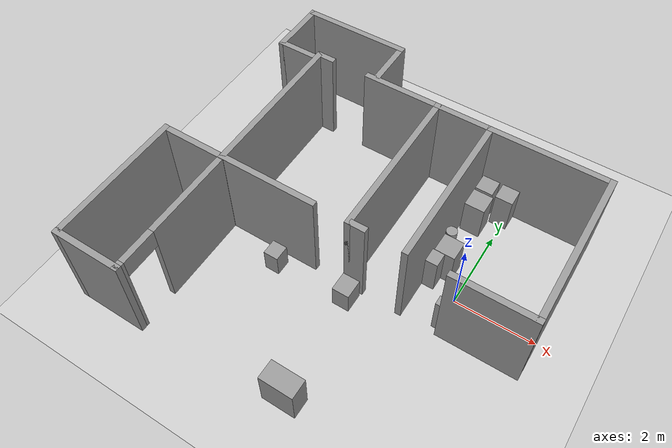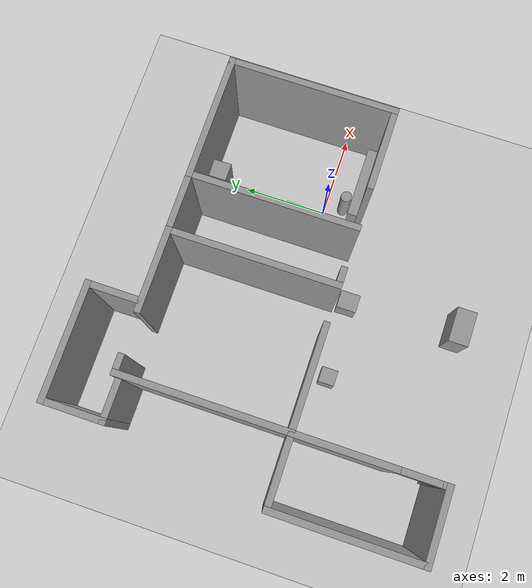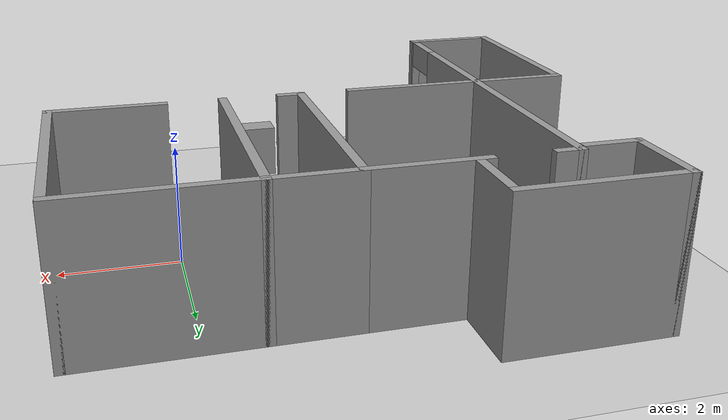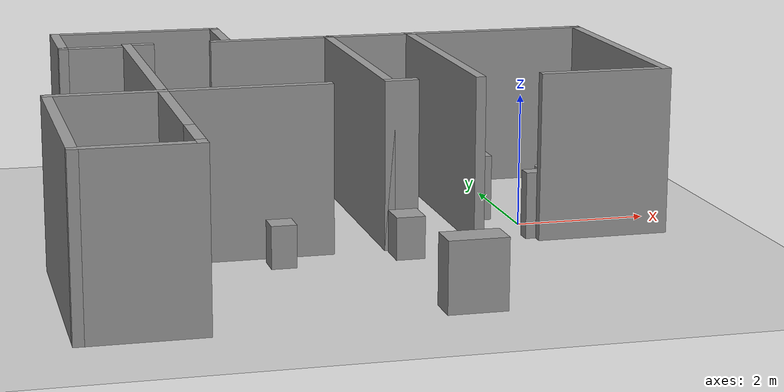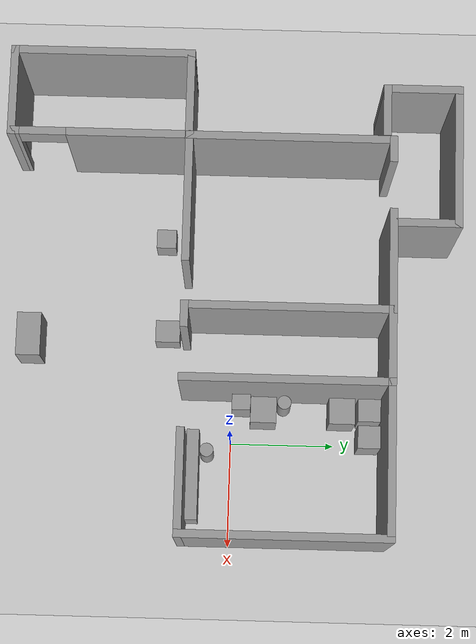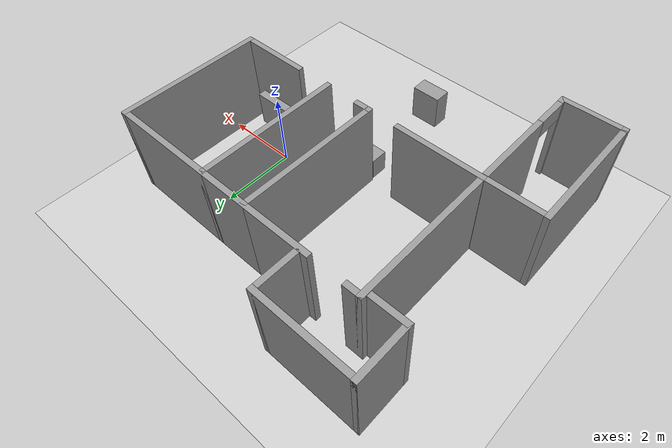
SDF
<sdf version="1.9">
 <world name="default">
  <model name="ground_plane">
   <static>true</static>
   <link name="link">
    <collision name="collision">
     <geometry><plane><normal>0 0 1</normal><size>100 100</size></plane></geometry>
     <surface><friction><ode><mu>100</mu><mu2>50</mu2></ode></friction></surface>
    </collision>
    <visual name="visual">
     <cast_shadows>false</cast_shadows>
     <geometry><plane><normal>0 0 1</normal><size>100 100</size></plane></geometry>
     <material>
      <script><uri>file://media/materials/scripts/gazebo.material</uri><name>Gazebo/Grey</name></script>
     </material>
    </visual>
   </link>
  </model>
  <model name="cma_escritorio">
   <pose>-1.7968200000000001 1.02121 0 0 0 0</pose>
   <link name="Wall_11">
    <collision name="Wall_11_Collision">
     <geometry><box><size>2 0.14999999999999999 2.5</size></box></geometry>
     <pose>0 0 1.25 0 0 0</pose>
    </collision>
    <visual name="Wall_11_Visual">
     <pose>0 0 1.25 0 0 0</pose>
     <geometry><box><size>2 0.14999999999999999 2.5</size></box></geometry>
     <material>
      <script><uri>file://media/materials/scripts/gazebo.material</uri><name>Gazebo/Grey</name></script>
      <ambient>1 1 1 1</ambient>
     </material>
    </visual>
    <pose>-1.3999999999999999 1.9299999999999999 0 0 0 3.1415899999999999</pose>
   </link>
   <link name="Wall_2">
    <collision name="Wall_2_Collision">
     <geometry><box><size>4 0.14999999999999999 2.5</size></box></geometry>
     <pose>0 0 1.25 0 0 0</pose>
    </collision>
    <visual name="Wall_2_Visual">
     <pose>0 0 1.25 0 0 0</pose>
     <geometry><box><size>4 0.14999999999999999 2.5</size></box></geometry>
     <material>
      <script><uri>file://media/materials/scripts/gazebo.material</uri><name>Gazebo/Grey</name></script>
      <ambient>1 1 1 1</ambient>
     </material>
    </visual>
    <pose>0.875 0.0050000000000000001 0 0 0 1.5708</pose>
   </link>
   <link name="Wall_25">
    <collision name="Wall_25_Collision">
     <geometry><box><size>2.5 0.14999999999999999 2.5</size></box></geometry>
     <pose>0 0 1.25 0 0 0</pose>
    </collision>
    <visual name="Wall_25_Visual">
     <pose>0 0 1.25 0 0 0</pose>
     <geometry><box><size>2.5 0.14999999999999999 2.5</size></box></geometry>
     <material>
      <script><uri>file://media/materials/scripts/gazebo.material</uri><name>Gazebo/Grey</name></script>
      <ambient>1 1 1 1</ambient>
     </material>
    </visual>
    <pose>-2.5499999999999998 -1.9299999999999999 0 0 0 3.1415899999999999</pose>
   </link>
   <link name="Wall_26">
    <collision name="Wall_26_Collision">
     <geometry><box><size>4 0.14999999999999999 2.5</size></box></geometry>
     <pose>0 0 1.25 0 0 0</pose>
    </collision>
    <visual name="Wall_26_Visual">
     <pose>0 0 1.25 0 0 0</pose>
     <geometry><box><size>4 0.14999999999999999 2.5</size></box></geometry>
     <material>
      <script><uri>file://media/materials/scripts/gazebo.material</uri><name>Gazebo/Grey</name></script>
      <ambient>1 1 1 1</ambient>
     </material>
    </visual>
    <pose>-3.7250000000000001 -0.0050000000000000001 0 0 0 1.5708</pose>
   </link>
   <link name="Wall_27">
    <collision name="Wall_27_Collision">
     <geometry><box><size>0.5 0.14999999999999999 2.5</size></box></geometry>
     <pose>0 0 1.25 0 0 0</pose>
    </collision>
    <visual name="Wall_27_Visual">
     <pose>0 0 1.25 0 0 0</pose>
     <geometry><box><size>0.5 0.14999999999999999 2.5</size></box></geometry>
     <material>
      <script><uri>file://media/materials/scripts/gazebo.material</uri><name>Gazebo/Grey</name></script>
      <ambient>1 1 1 1</ambient>
     </material>
    </visual>
    <pose>-3.5499999999999998 1.9199999999999999 0 0 0 0</pose>
   </link>
   <link name="Wall_3">
    <collision name="Wall_3_Collision">
     <geometry><box><size>3 0.14999999999999999 2.5</size></box></geometry>
     <pose>0 0 1.25 0 0 0</pose>
    </collision>
    <visual name="Wall_3_Visual">
     <pose>0 0 1.25 0 0 0</pose>
     <geometry><box><size>3 0.14999999999999999 2.5</size></box></geometry>
     <material>
      <script><uri>file://media/materials/scripts/gazebo.material</uri><name>Gazebo/Grey</name></script>
      <ambient>1 1 1 1</ambient>
     </material>
    </visual>
    <pose>2.2999999999999998 1.9299999999999999 0 0 0 0</pose>
   </link>
   <link name="Wall_4">
    <collision name="Wall_4_Collision">
     <geometry><box><size>4 0.14999999999999999 2.5</size></box></geometry>
     <pose>0 0 1.25 0 0 0</pose>
    </collision>
    <visual name="Wall_4_Visual">
     <pose>0 0 1.25 0 0 0</pose>
     <geometry><box><size>4 0.14999999999999999 2.5</size></box></geometry>
     <material>
      <script><uri>file://media/materials/scripts/gazebo.material</uri><name>Gazebo/Grey</name></script>
      <ambient>1 1 1 1</ambient>
     </material>
    </visual>
    <pose>3.7250000000000001 0.0050000000000000001 0 0 0 -1.5708</pose>
   </link>
   <link name="Wall_5">
    <collision name="Wall_5_Collision">
     <geometry><box><size>2 0.14999999999999999 2.5</size></box></geometry>
     <pose>0 0 1.25 0 0 0</pose>
    </collision>
    <visual name="Wall_5_Visual">
     <pose>0 0 1.25 0 0 0</pose>
     <geometry><box><size>2 0.14999999999999999 2.5</size></box></geometry>
     <material>
      <script><uri>file://media/materials/scripts/gazebo.material</uri><name>Gazebo/Grey</name></script>
      <ambient>1 1 1 1</ambient>
     </material>
    </visual>
    <pose>2.7999999999999998 -1.9199999999999999 0 0 0 3.1415899999999999</pose>
   </link>
   <link name="Wall_7">
    <collision name="Wall_7_Collision">
     <geometry><box><size>1.5 0.14999999999999999 2.5</size></box></geometry>
     <pose>0 0 1.25 0 0 0</pose>
    </collision>
    <visual name="Wall_7_Visual">
     <pose>0 0 1.25 0 0 0</pose>
     <geometry><box><size>1.5 0.14999999999999999 2.5</size></box></geometry>
     <material>
      <script><uri>file://media/materials/scripts/gazebo.material</uri><name>Gazebo/Grey</name></script>
      <ambient>1 1 1 1</ambient>
     </material>
    </visual>
    <pose>0.20000000000000001 1.9299999999999999 0 0 0 3.1415899999999999</pose>
   </link>
   <link name="Wall_8">
    <collision name="Wall_8_Collision">
     <geometry><box><size>4 0.14999999999999999 2.5</size></box></geometry>
     <pose>0 0 1.25 0 0 0</pose>
    </collision>
    <visual name="Wall_8_Visual">
     <pose>0 0 1.25 0 0 0</pose>
     <geometry><box><size>4 0.14999999999999999 2.5</size></box></geometry>
     <material>
      <script><uri>file://media/materials/scripts/gazebo.material</uri><name>Gazebo/Grey</name></script>
      <ambient>1 1 1 1</ambient>
     </material>
    </visual>
    <pose>-0.47499999999999998 0.0050000000000000001 0 0 0 -1.5708</pose>
   </link>
   <link name="Wall_9">
    <collision name="Wall_9_Collision">
     <geometry><box><size>0.5 0.14999999999999999 2.5</size></box></geometry>
     <pose>0 0 1.25 0 0 0</pose>
    </collision>
    <visual name="Wall_9_Visual">
     <pose>0 0 1.25 0 0 0</pose>
     <geometry><box><size>0.5 0.14999999999999999 2.5</size></box></geometry>
     <material>
      <script><uri>file://media/materials/scripts/gazebo.material</uri><name>Gazebo/Grey</name></script>
      <ambient>1 1 1 1</ambient>
     </material>
    </visual>
    <pose>-0.29999999999999999 -1.9199999999999999 0 0 0 0</pose>
   </link>
   <static>true</static>
  </model>
  <model name="cma_banheiro">
   <pose>-5.2292800000000002 3.4870999999999999 0 0 0 0</pose>
   <link name="Wall_0">
    <collision name="Wall_0_Collision">
     <geometry><box><size>1 0.14999999999999999 2.5</size></box></geometry>
     <pose>0 0 1.25 0 0 0</pose>
    </collision>
    <visual name="Wall_0_Visual">
     <pose>0 0 1.25 0 0 0</pose>
     <geometry><box><size>1 0.14999999999999999 2.5</size></box></geometry>
     <material>
      <script><uri>file://media/materials/scripts/gazebo.material</uri><name>Gazebo/Grey</name></script>
      <ambient>1 1 1 1</ambient>
     </material>
    </visual>
    <pose>-0.875 -0.67500000000000004 0 0 0 3.1415899999999999</pose>
   </link>
   <link name="Wall_1">
    <collision name="Wall_1_Collision">
     <geometry><box><size>1.5 0.14999999999999999 2.5</size></box></geometry>
     <pose>0 0 1.25 0 0 0</pose>
    </collision>
    <visual name="Wall_1_Visual">
     <pose>0 0 1.25 0 0 0</pose>
     <geometry><box><size>1.5 0.14999999999999999 2.5</size></box></geometry>
     <material>
      <script><uri>file://media/materials/scripts/gazebo.material</uri><name>Gazebo/Grey</name></script>
      <ambient>1 1 1 1</ambient>
     </material>
    </visual>
    <pose>-1.3 0 0 0 0 1.5708</pose>
   </link>
   <link name="Wall_2">
    <collision name="Wall_2_Collision">
     <geometry><box><size>2.75 0.14999999999999999 2.5</size></box></geometry>
     <pose>0 0 1.25 0 0 0</pose>
    </collision>
    <visual name="Wall_2_Visual">
     <pose>0 0 1.25 0 0 0</pose>
     <geometry><box><size>2.75 0.14999999999999999 2.5</size></box></geometry>
     <material>
      <script><uri>file://media/materials/scripts/gazebo.material</uri><name>Gazebo/Grey</name></script>
      <ambient>1 1 1 1</ambient>
     </material>
    </visual>
    <pose>0 0.67500000000000004 0 0 0 0</pose>
   </link>
   <link name="Wall_4">
    <collision name="Wall_4_Collision">
     <geometry><box><size>1.25 0.14999999999999999 2.5</size></box></geometry>
     <pose>0 0 1.25 0 0 0</pose>
    </collision>
    <visual name="Wall_4_Visual">
     <pose>0 0 1.25 0 0 0</pose>
     <geometry><box><size>1.25 0.14999999999999999 2.5</size></box></geometry>
     <material>
      <script><uri>file://media/materials/scripts/gazebo.material</uri><name>Gazebo/Grey</name></script>
      <ambient>1 1 1 1</ambient>
     </material>
    </visual>
    <pose>1.3 0.125 0 0 0 -1.5708</pose>
   </link>
   <static>true</static>
  </model>
  <model name="cma_varanda1">
   <pose>-6.3251799999999996 -2.5931299999999999 0 0 0 0</pose>
   <link name="Wall_0">
    <pose>0.80000000000000004 0 0 0 0 -1.5708</pose>
    <visual name="Wall_0_Visual_0">
     <pose>-0.55249999999999999 0 1.25 0 0 0</pose>
     <geometry><box><size>2.395 0.14999999999999999 2.5</size></box></geometry>
     <material>
      <script><uri>file://media/materials/scripts/gazebo.material</uri><name>Gazebo/Grey</name></script>
      <ambient>1 1 1 1</ambient>
     </material>
    </visual>
    <collision name="Wall_0_Collision_0">
     <geometry><box><size>2.395 0.14999999999999999 2.5</size></box></geometry>
     <pose>-0.55249999999999999 0 1.25 0 0 0</pose>
    </collision>
    <visual name="Wall_0_Visual_1">
     <pose>1.6375 0 1.25 0 0 0</pose>
     <geometry><box><size>0.22500000000000001 0.14999999999999999 2.5</size></box></geometry>
     <material>
      <script><uri>file://media/materials/scripts/gazebo.material</uri><name>Gazebo/Grey</name></script>
      <ambient>1 1 1 1</ambient>
     </material>
    </visual>
    <collision name="Wall_0_Collision_1">
     <geometry><box><size>0.22500000000000001 0.14999999999999999 2.5</size></box></geometry>
     <pose>1.6375 0 1.25 0 0 0</pose>
    </collision>
    <visual name="Wall_0_Visual_2">
     <pose>1.085 0 2.25 0 0 0</pose>
     <geometry><box><size>0.88 0.14999999999999999 0.5</size></box></geometry>
     <material>
      <script><uri>file://media/materials/scripts/gazebo.material</uri><name>Gazebo/Grey</name></script>
      <ambient>1 1 1 1</ambient>
     </material>
    </visual>
    <collision name="Wall_0_Collision_2">
     <geometry><box><size>0.88 0.14999999999999999 0.5</size></box></geometry>
     <pose>1.085 0 2.25 0 0 0</pose>
    </collision>
   </link>
   <link name="Wall_1">
    <collision name="Wall_1_Collision">
     <geometry><box><size>1.75 0.14999999999999999 2.5</size></box></geometry>
     <pose>0 0 1.25 0 0 0</pose>
    </collision>
    <visual name="Wall_1_Visual">
     <pose>0 0 1.25 0 0 0</pose>
     <geometry><box><size>1.75 0.14999999999999999 2.5</size></box></geometry>
     <material>
      <script><uri>file://media/materials/scripts/gazebo.material</uri><name>Gazebo/Grey</name></script>
      <ambient>1 1 1 1</ambient>
     </material>
    </visual>
    <pose>0 -1.675 0 0 0 3.1415899999999999</pose>
   </link>
   <link name="Wall_2">
    <collision name="Wall_2_Collision">
     <geometry><box><size>3.5 0.14999999999999999 2.5</size></box></geometry>
     <pose>0 0 1.25 0 0 0</pose>
    </collision>
    <visual name="Wall_2_Visual">
     <pose>0 0 1.25 0 0 0</pose>
     <geometry><box><size>3.5 0.14999999999999999 2.5</size></box></geometry>
     <material>
      <script><uri>file://media/materials/scripts/gazebo.material</uri><name>Gazebo/Grey</name></script>
      <ambient>1 1 1 1</ambient>
     </material>
    </visual>
    <pose>-0.80000000000000004 0 0 0 0 1.5708</pose>
   </link>
   <link name="Wall_3">
    <collision name="Wall_3_Collision">
     <geometry><box><size>1.75 0.14999999999999999 2.5</size></box></geometry>
     <pose>0 0 1.25 0 0 0</pose>
    </collision>
    <visual name="Wall_3_Visual">
     <pose>0 0 1.25 0 0 0</pose>
     <geometry><box><size>1.75 0.14999999999999999 2.5</size></box></geometry>
     <material>
      <script><uri>file://media/materials/scripts/gazebo.material</uri><name>Gazebo/Grey</name></script>
      <ambient>1 1 1 1</ambient>
     </material>
    </visual>
    <pose>0 1.675 0 0 0 0</pose>
   </link>
   <static>true</static>
  </model>
  <model name="cma_armario">
   <link name="link_0">
    <pose>1.3215699999999999 0.88517800000000002 0.5 0 0 0</pose>
    <inertial>
     <mass>0.40237600000000001</mass>
     <inertia>
      <ixx>0.0353686</ixx>
      <ixy>0</ixy>
      <ixz>0</ixz>
      <iyy>0.13261600000000001</iyy>
      <iyz>0</iyz>
      <izz>0.100922</izz>
     </inertia>
    </inertial>
    <visual name="visual">
     <geometry><box><size>1.7187699999999999 0.234069 1</size></box></geometry>
     <material>
      <lighting>true</lighting>
      <script><uri>file://media/materials/scripts/gazebo.material</uri><name>Gazebo/Grey</name></script>
      <ambient>0.300000012 0.300000012 0.300000012 1</ambient>
      <diffuse>0.699999988 0.699999988 0.699999988 1</diffuse>
      <specular>0.00999999978 0.00999999978 0.00999999978 1</specular>
      <emissive>0 0 0 1</emissive>
     </material>
    </visual>
    <collision name="collision">
     <geometry><box><size>1.7187699999999999 0.234069 1</size></box></geometry>
     <surface>
      <friction>
       <ode><mu>1</mu><mu2>1</mu2><fdir1>0 0 0</fdir1><slip1>0</slip1><slip2>0</slip2></ode>
       <torsional>
        <coefficient>1</coefficient>
        <patch_radius>0</patch_radius>
        <surface_radius>0</surface_radius>
        <use_patch_radius>true</use_patch_radius>
        <ode><slip>0</slip></ode>
       </torsional>
      </friction>
      <bounce><restitution_coefficient>0</restitution_coefficient><threshold>1000000</threshold></bounce>
      <contact>
       <collide_without_contact>false</collide_without_contact>
       <collide_without_contact_bitmask>1</collide_without_contact_bitmask>
       <collide_bitmask>1</collide_bitmask>
       <ode>
        <soft_cfm>0</soft_cfm>
        <soft_erp>0.20000000000000001</soft_erp>
        <kp>10000000000000</kp>
        <kd>1</kd>
        <max_vel>0.01</max_vel>
        <min_depth>0</min_depth>
       </ode>
       <bullet>
        <split_impulse>true</split_impulse>
        <split_impulse_penetration_threshold>-0.01</split_impulse_penetration_threshold>
        <soft_cfm>0</soft_cfm>
        <soft_erp>0.20000000000000001</soft_erp>
        <kp>10000000000000</kp>
        <kd>1</kd>
       </bullet>
      </contact>
     </surface>
    </collision>
   </link>
   <static>false</static>
   <pose>-0.61412800000000001 -1.59222 -9.9999999999999995e-07 1.9999999999999999e-06 -1.0339757656912846e-25 0.00079299999999999998</pose>
  </model>
  <model name="cma_lixo">
   <link name="link_1">
    <pose>0.88296200000000002 1.81586 0.5 0 0 0</pose>
    <inertial>
     <mass>0.068764400000000003</mass>
     <inertia>
      <ixx>0.00602588</ixx>
      <ixy>0</ixy>
      <ixz>0</ixz>
      <iyy>0.00602588</iyy>
      <iyz>0</iyz>
      <izz>0.00059106800000000004</izz>
     </inertia>
    </inertial>
    <visual name="visual">
     <geometry><cylinder><radius>0.13111200000000001</radius><length>1</length></cylinder></geometry>
     <material>
      <lighting>true</lighting>
      <script><uri>file://media/materials/scripts/gazebo.material</uri><name>Gazebo/Grey</name></script>
      <ambient>0.300000012 0.300000012 0.300000012 1</ambient>
      <diffuse>0.699999988 0.699999988 0.699999988 1</diffuse>
      <specular>0.00999999978 0.00999999978 0.00999999978 1</specular>
      <emissive>0 0 0 1</emissive>
     </material>
    </visual>
    <collision name="collision">
     <geometry><cylinder><radius>0.13111200000000001</radius><length>1</length></cylinder></geometry>
     <surface>
      <friction>
       <ode><mu>1</mu><mu2>1</mu2><fdir1>0 0 0</fdir1><slip1>0</slip1><slip2>0</slip2></ode>
       <torsional>
        <coefficient>1</coefficient>
        <patch_radius>0</patch_radius>
        <surface_radius>0</surface_radius>
        <use_patch_radius>true</use_patch_radius>
        <ode><slip>0</slip></ode>
       </torsional>
      </friction>
      <bounce><restitution_coefficient>0</restitution_coefficient><threshold>1000000</threshold></bounce>
      <contact>
       <collide_without_contact>false</collide_without_contact>
       <collide_without_contact_bitmask>1</collide_without_contact_bitmask>
       <collide_bitmask>1</collide_bitmask>
       <ode>
        <soft_cfm>0</soft_cfm>
        <soft_erp>0.20000000000000001</soft_erp>
        <kp>10000000000000</kp>
        <kd>1</kd>
        <max_vel>0.01</max_vel>
        <min_depth>0</min_depth>
       </ode>
       <bullet>
        <split_impulse>true</split_impulse>
        <split_impulse_penetration_threshold>-0.01</split_impulse_penetration_threshold>
        <soft_cfm>0</soft_cfm>
        <soft_erp>0.20000000000000001</soft_erp>
        <kp>10000000000000</kp>
        <kd>1</kd>
       </bullet>
      </contact>
     </surface>
    </collision>
   </link>
   <static>false</static>
   <pose>-0.62783999999999995 -2.2669899999999998 -9.0000000000000002e-06 0 0 0.010421999999999999</pose>
  </model>
  <model name="cma_gaveteiro_pequeno">
   <link name="link_0">
    <pose>0.25617400000000001 1.2505500000000001 0.5 0 0 0</pose>
    <inertial>
     <mass>0.18718599999999999</mass>
     <inertia>
      <ixx>0.018509999999999999</ixx>
      <ixy>0</ixy>
      <ixz>0</ixz>
      <iyy>0.018527600000000002</iyy>
      <iyz>0</iyz>
      <izz>0.00583981</izz>
     </inertia>
    </inertial>
    <visual name="visual">
     <geometry><box><size>0.43331700000000001 0.432002 1</size></box></geometry>
     <material>
      <lighting>true</lighting>
      <script><uri>file://media/materials/scripts/gazebo.material</uri><name>Gazebo/Grey</name></script>
      <ambient>0.300000012 0.300000012 0.300000012 1</ambient>
      <diffuse>0.699999988 0.699999988 0.699999988 1</diffuse>
      <specular>0.00999999978 0.00999999978 0.00999999978 1</specular>
      <emissive>0 0 0 1</emissive>
     </material>
    </visual>
    <collision name="collision">
     <geometry><box><size>0.43331700000000001 0.432002 1</size></box></geometry>
     <surface>
      <friction>
       <ode><mu>1</mu><mu2>1</mu2><fdir1>0 0 0</fdir1><slip1>0</slip1><slip2>0</slip2></ode>
       <torsional>
        <coefficient>1</coefficient>
        <patch_radius>0</patch_radius>
        <surface_radius>0</surface_radius>
        <use_patch_radius>true</use_patch_radius>
        <ode><slip>0</slip></ode>
       </torsional>
      </friction>
      <bounce><restitution_coefficient>0</restitution_coefficient><threshold>1000000</threshold></bounce>
      <contact>
       <collide_without_contact>false</collide_without_contact>
       <collide_without_contact_bitmask>1</collide_without_contact_bitmask>
       <collide_bitmask>1</collide_bitmask>
       <ode>
        <soft_cfm>0</soft_cfm>
        <soft_erp>0.20000000000000001</soft_erp>
        <kp>10000000000000</kp>
        <kd>1</kd>
        <max_vel>0.01</max_vel>
        <min_depth>0</min_depth>
       </ode>
       <bullet>
        <split_impulse>true</split_impulse>
        <split_impulse_penetration_threshold>-0.01</split_impulse_penetration_threshold>
        <soft_cfm>0</soft_cfm>
        <soft_erp>0.20000000000000001</soft_erp>
        <kp>10000000000000</kp>
        <kd>1</kd>
       </bullet>
      </contact>
     </surface>
    </collision>
   </link>
   <static>false</static>
   <pose>-0.85306099999999996 1.39432 -6.9999999999999999e-06 3.9999999999999998e-06 -1.9999999999999999e-06 9.0000000000000002e-06</pose>
  </model>
  <model name="cma_gaveteiro_pequeno_0">
   <link name="link_0">
    <pose>0.25617400000000001 1.2505500000000001 0.5 0 0 0</pose>
    <inertial>
     <mass>0.18718599999999999</mass>
     <inertia>
      <ixx>0.018509999999999999</ixx>
      <ixy>0</ixy>
      <ixz>0</ixz>
      <iyy>0.018527600000000002</iyy>
      <iyz>0</iyz>
      <izz>0.00583981</izz>
     </inertia>
    </inertial>
    <visual name="visual">
     <geometry><box><size>0.43331700000000001 0.432002 1</size></box></geometry>
     <material>
      <lighting>true</lighting>
      <script><uri>file://media/materials/scripts/gazebo.material</uri><name>Gazebo/Grey</name></script>
      <ambient>0.300000012 0.300000012 0.300000012 1</ambient>
      <diffuse>0.699999988 0.699999988 0.699999988 1</diffuse>
      <specular>0.00999999978 0.00999999978 0.00999999978 1</specular>
      <emissive>0 0 0 1</emissive>
     </material>
    </visual>
    <collision name="collision">
     <geometry><box><size>0.43331700000000001 0.432002 1</size></box></geometry>
     <surface>
      <friction>
       <ode><mu>1</mu><mu2>1</mu2><fdir1>0 0 0</fdir1><slip1>0</slip1><slip2>0</slip2></ode>
       <torsional>
        <coefficient>1</coefficient>
        <patch_radius>0</patch_radius>
        <surface_radius>0</surface_radius>
        <use_patch_radius>true</use_patch_radius>
        <ode><slip>0</slip></ode>
       </torsional>
      </friction>
      <bounce><restitution_coefficient>0</restitution_coefficient><threshold>1000000</threshold></bounce>
      <contact>
       <collide_without_contact>false</collide_without_contact>
       <collide_without_contact_bitmask>1</collide_without_contact_bitmask>
       <collide_bitmask>1</collide_bitmask>
       <ode>
        <soft_cfm>0</soft_cfm>
        <soft_erp>0.20000000000000001</soft_erp>
        <kp>10000000000000</kp>
        <kd>1</kd>
        <max_vel>0.01</max_vel>
        <min_depth>0</min_depth>
       </ode>
       <bullet>
        <split_impulse>true</split_impulse>
        <split_impulse_penetration_threshold>-0.01</split_impulse_penetration_threshold>
        <soft_cfm>0</soft_cfm>
        <soft_erp>0.20000000000000001</soft_erp>
        <kp>10000000000000</kp>
        <kd>1</kd>
       </bullet>
      </contact>
     </surface>
    </collision>
   </link>
   <static>false</static>
   <pose>-0.34129599999999999 1.3951 5.0000000000000004e-06 -5.0000000000000013e-06 5.0000000000000013e-06 -4.6999999999999997e-05</pose>
  </model>
  <model name="cma_gaveteiro">
   <link name="link_0">
    <pose>0 3.9999999999999998e-06 0 0 0 0</pose>
    <inertial>
     <mass>0.245086</mass>
     <inertia>
      <ixx>0.025418</ixx>
      <ixy>0</ixy>
      <ixz>0</ixz>
      <iyy>0.025441100000000001</iyy>
      <iyz>0</iyz>
      <izz>0.010011300000000001</izz>
     </inertia>
    </inertial>
    <visual name="visual">
     <geometry><box><size>0.49565700000000001 0.49449100000000001 1</size></box></geometry>
     <material>
      <lighting>true</lighting>
      <script><uri>file://media/materials/scripts/gazebo.material</uri><name>Gazebo/Grey</name></script>
      <ambient>0.300000012 0.300000012 0.300000012 1</ambient>
      <diffuse>0.699999988 0.699999988 0.699999988 1</diffuse>
      <specular>0.00999999978 0.00999999978 0.00999999978 1</specular>
      <emissive>0 0 0 1</emissive>
     </material>
    </visual>
    <collision name="collision">
     <geometry><box><size>0.49565700000000001 0.49449100000000001 1</size></box></geometry>
     <surface>
      <friction>
       <ode><mu>1</mu><mu2>1</mu2><fdir1>0 0 0</fdir1><slip1>0</slip1><slip2>0</slip2></ode>
       <torsional>
        <coefficient>1</coefficient>
        <patch_radius>0</patch_radius>
        <surface_radius>0</surface_radius>
        <use_patch_radius>true</use_patch_radius>
        <ode><slip>0</slip></ode>
       </torsional>
      </friction>
      <bounce><restitution_coefficient>0</restitution_coefficient><threshold>1000000</threshold></bounce>
      <contact>
       <collide_without_contact>false</collide_without_contact>
       <collide_without_contact_bitmask>1</collide_without_contact_bitmask>
       <collide_bitmask>1</collide_bitmask>
       <ode>
        <soft_cfm>0</soft_cfm>
        <soft_erp>0.20000000000000001</soft_erp>
        <kp>10000000000000</kp>
        <kd>1</kd>
        <max_vel>0.01</max_vel>
        <min_depth>0</min_depth>
       </ode>
       <bullet>
        <split_impulse>true</split_impulse>
        <split_impulse_penetration_threshold>-0.01</split_impulse_penetration_threshold>
        <soft_cfm>0</soft_cfm>
        <soft_erp>0.20000000000000001</soft_erp>
        <kp>10000000000000</kp>
        <kd>1</kd>
       </bullet>
      </contact>
     </surface>
    </collision>
   </link>
   <static>false</static>
   <pose>-0.56907700000000006 2.1223000000000001 0.5 -1.0000000000000002e-06 -2.0000000000000003e-06 0.00028399999999999996</pose>
  </model>
  <model name="cma_gaveteiro_0">
   <link name="link_0">
    <pose>0 3.9999999999999998e-06 0 0 0 0</pose>
    <inertial>
     <mass>0.245086</mass>
     <inertia>
      <ixx>0.025418</ixx>
      <ixy>0</ixy>
      <ixz>0</ixz>
      <iyy>0.025441100000000001</iyy>
      <iyz>0</iyz>
      <izz>0.010011300000000001</izz>
     </inertia>
    </inertial>
    <visual name="visual">
     <geometry><box><size>0.49565700000000001 0.49449100000000001 1</size></box></geometry>
     <material>
      <lighting>true</lighting>
      <script><uri>file://media/materials/scripts/gazebo.material</uri><name>Gazebo/Grey</name></script>
      <ambient>0.300000012 0.300000012 0.300000012 1</ambient>
      <diffuse>0.699999988 0.699999988 0.699999988 1</diffuse>
      <specular>0.00999999978 0.00999999978 0.00999999978 1</specular>
      <emissive>0 0 0 1</emissive>
     </material>
    </visual>
    <collision name="collision">
     <geometry><box><size>0.49565700000000001 0.49449100000000001 1</size></box></geometry>
     <surface>
      <friction>
       <ode><mu>1</mu><mu2>1</mu2><fdir1>0 0 0</fdir1><slip1>0</slip1><slip2>0</slip2></ode>
       <torsional>
        <coefficient>1</coefficient>
        <patch_radius>0</patch_radius>
        <surface_radius>0</surface_radius>
        <use_patch_radius>true</use_patch_radius>
        <ode><slip>0</slip></ode>
       </torsional>
      </friction>
      <bounce><restitution_coefficient>0</restitution_coefficient><threshold>1000000</threshold></bounce>
      <contact>
       <collide_without_contact>false</collide_without_contact>
       <collide_without_contact_bitmask>1</collide_without_contact_bitmask>
       <collide_bitmask>1</collide_bitmask>
       <ode>
        <soft_cfm>0</soft_cfm>
        <soft_erp>0.20000000000000001</soft_erp>
        <kp>10000000000000</kp>
        <kd>1</kd>
        <max_vel>0.01</max_vel>
        <min_depth>0</min_depth>
       </ode>
       <bullet>
        <split_impulse>true</split_impulse>
        <split_impulse_penetration_threshold>-0.01</split_impulse_penetration_threshold>
        <soft_cfm>0</soft_cfm>
        <soft_erp>0.20000000000000001</soft_erp>
        <kp>10000000000000</kp>
        <kd>1</kd>
       </bullet>
      </contact>
     </surface>
    </collision>
   </link>
   <static>false</static>
   <pose>-0.56013900000000005 0.62359500000000001 0.50000100000000003 1.0000000000000002e-06 1.0000000000000004e-06 -0.0078110000000000002</pose>
  </model>
  <model name="cma_lixo_0">
   <link name="link_1">
    <pose>0.88296200000000002 1.81586 0.5 0 0 0</pose>
    <inertial>
     <mass>0.068764400000000003</mass>
     <inertia>
      <ixx>0.00602588</ixx>
      <ixy>0</ixy>
      <ixz>0</ixz>
      <iyy>0.00602588</iyy>
      <iyz>0</iyz>
      <izz>0.00059106800000000004</izz>
     </inertia>
    </inertial>
    <visual name="visual">
     <geometry><cylinder><radius>0.13111200000000001</radius><length>1</length></cylinder></geometry>
     <material>
      <lighting>true</lighting>
      <script><uri>file://media/materials/scripts/gazebo.material</uri><name>Gazebo/Grey</name></script>
      <ambient>0.300000012 0.300000012 0.300000012 1</ambient>
      <diffuse>0.699999988 0.699999988 0.699999988 1</diffuse>
      <specular>0.00999999978 0.00999999978 0.00999999978 1</specular>
      <emissive>0 0 0 1</emissive>
     </material>
    </visual>
    <collision name="collision">
     <geometry><cylinder><radius>0.13111200000000001</radius><length>1</length></cylinder></geometry>
     <surface>
      <friction>
       <ode><mu>1</mu><mu2>1</mu2><fdir1>0 0 0</fdir1><slip1>0</slip1><slip2>0</slip2></ode>
       <torsional>
        <coefficient>1</coefficient>
        <patch_radius>0</patch_radius>
        <surface_radius>0</surface_radius>
        <use_patch_radius>true</use_patch_radius>
        <ode><slip>0</slip></ode>
       </torsional>
      </friction>
      <bounce><restitution_coefficient>0</restitution_coefficient><threshold>1000000</threshold></bounce>
      <contact>
       <collide_without_contact>false</collide_without_contact>
       <collide_without_contact_bitmask>1</collide_without_contact_bitmask>
       <collide_bitmask>1</collide_bitmask>
       <ode>
        <soft_cfm>0</soft_cfm>
        <soft_erp>0.20000000000000001</soft_erp>
        <kp>10000000000000</kp>
        <kd>1</kd>
        <max_vel>0.01</max_vel>
        <min_depth>0</min_depth>
       </ode>
       <bullet>
        <split_impulse>true</split_impulse>
        <split_impulse_penetration_threshold>-0.01</split_impulse_penetration_threshold>
        <soft_cfm>0</soft_cfm>
        <soft_erp>0.20000000000000001</soft_erp>
        <kp>10000000000000</kp>
        <kd>1</kd>
       </bullet>
      </contact>
     </surface>
    </collision>
   </link>
   <static>false</static>
   <pose>-1.5905199999999999 -0.796852 -6.9999999999999999e-06 0 0 0.0007049999999999999</pose>
  </model>
  <model name="unit_box_0">
   <pose>-0.697515 0.193796 0.5 0 0 3.9999999999999998e-06</pose>
   <link name="link">
    <inertial>
     <mass>1</mass>
     <inertia>
      <ixx>0.16666700000000001</ixx>
      <ixy>0</ixy>
      <ixz>0</ixz>
      <iyy>0.16666700000000001</iyy>
      <iyz>0</iyz>
      <izz>0.16666700000000001</izz>
     </inertia>
    </inertial>
    <collision name="collision"><geometry><box><size>0.298595 0.35513 1</size></box></geometry></collision>
    <visual name="visual">
     <geometry><box><size>0.298595 0.35513 1</size></box></geometry>
     <material>
      <script><name>Gazebo/Grey</name><uri>file://media/materials/scripts/gazebo.material</uri></script>
     </material>
    </visual>
   </link>
  </model>
  <model name="cma_bau_s">
   <link name="link_1">
    <pose>0.109594 0.27229300000000001 0 0 0 0</pose>
    <inertial>
     <mass>0.12547900000000001</mass>
     <inertia>
      <ixx>0.0064194300000000003</ixx>
      <ixy>0</ixy>
      <ixz>0</ixz>
      <iyy>0.0059753999999999996</iyy>
      <iyz>0</iyz>
      <izz>0.0042208499999999999</izz>
     </inertia>
    </inertial>
    <visual name="visual">
     <geometry><box><size>0.42496400000000001 0.47228300000000001 0.62511799999999995</size></box></geometry>
     <material>
      <lighting>true</lighting>
      <script><uri>file://media/materials/scripts/gazebo.material</uri><name>Gazebo/Grey</name></script>
      <ambient>0.300000012 0.300000012 0.300000012 1</ambient>
      <diffuse>0.699999988 0.699999988 0.699999988 1</diffuse>
      <specular>0.00999999978 0.00999999978 0.00999999978 1</specular>
      <emissive>0 0 0 1</emissive>
     </material>
    </visual>
    <collision name="collision">
     <geometry><box><size>0.42496400000000001 0.47228300000000001 0.62511799999999995</size></box></geometry>
     <surface>
      <friction>
       <ode><mu>1</mu><mu2>1</mu2><fdir1>0 0 0</fdir1><slip1>0</slip1><slip2>0</slip2></ode>
       <torsional>
        <coefficient>1</coefficient>
        <patch_radius>0</patch_radius>
        <surface_radius>0</surface_radius>
        <use_patch_radius>true</use_patch_radius>
        <ode><slip>0</slip></ode>
       </torsional>
      </friction>
      <bounce><restitution_coefficient>0</restitution_coefficient><threshold>1000000</threshold></bounce>
      <contact>
       <collide_without_contact>false</collide_without_contact>
       <collide_without_contact_bitmask>1</collide_without_contact_bitmask>
       <collide_bitmask>1</collide_bitmask>
       <ode>
        <soft_cfm>0</soft_cfm>
        <soft_erp>0.20000000000000001</soft_erp>
        <kp>10000000000000</kp>
        <kd>1</kd>
        <max_vel>0.01</max_vel>
        <min_depth>0</min_depth>
       </ode>
       <bullet>
        <split_impulse>true</split_impulse>
        <split_impulse_penetration_threshold>-0.01</split_impulse_penetration_threshold>
        <soft_cfm>0</soft_cfm>
        <soft_erp>0.20000000000000001</soft_erp>
        <kp>10000000000000</kp>
        <kd>1</kd>
       </bullet>
      </contact>
     </surface>
    </collision>
   </link>
   <static>false</static>
   <pose>-2.2097799999999999 -1.5406299999999999 0.312558 3.9999999999999998e-06 1.2e-05 -3.2311742680179088e-27</pose>
  </model>
  <model name="cma_armario_s">
   <link name="link_1">
    <pose>-1.9999999999999999e-06 -3.0000000000000001e-06 0 0 0 0</pose>
    <inertial>
     <mass>0.39015899999999998</mass>
     <inertia>
      <ixx>0.039647000000000002</ixx>
      <ixy>0</ixy>
      <ixz>0</ixz>
      <iyy>0.055070800000000003</iyy>
      <iyz>0</iyz>
      <izz>0.029691200000000001</izz>
     </inertia>
    </inertial>
    <visual name="visual">
     <geometry><box><size>0.83294199999999996 0.46839700000000001 1</size></box></geometry>
     <material>
      <lighting>true</lighting>
      <script><uri>file://media/materials/scripts/gazebo.material</uri><name>Gazebo/Grey</name></script>
      <ambient>0.300000012 0.300000012 0.300000012 1</ambient>
      <diffuse>0.699999988 0.699999988 0.699999988 1</diffuse>
      <specular>0.00999999978 0.00999999978 0.00999999978 1</specular>
      <emissive>0 0 0 1</emissive>
     </material>
    </visual>
    <collision name="collision">
     <geometry><box><size>0.83294199999999996 0.46839700000000001 1</size></box></geometry>
     <surface>
      <friction>
       <ode><mu>1</mu><mu2>1</mu2><fdir1>0 0 0</fdir1><slip1>0</slip1><slip2>0</slip2></ode>
       <torsional>
        <coefficient>1</coefficient>
        <patch_radius>0</patch_radius>
        <surface_radius>0</surface_radius>
        <use_patch_radius>true</use_patch_radius>
        <ode><slip>0</slip></ode>
       </torsional>
      </friction>
      <bounce><restitution_coefficient>0</restitution_coefficient><threshold>1000000</threshold></bounce>
      <contact>
       <collide_without_contact>false</collide_without_contact>
       <collide_without_contact_bitmask>1</collide_without_contact_bitmask>
       <collide_bitmask>1</collide_bitmask>
       <ode>
        <soft_cfm>0</soft_cfm>
        <soft_erp>0.20000000000000001</soft_erp>
        <kp>10000000000000</kp>
        <kd>1</kd>
        <max_vel>0.01</max_vel>
        <min_depth>0</min_depth>
       </ode>
       <bullet>
        <split_impulse>true</split_impulse>
        <split_impulse_penetration_threshold>-0.01</split_impulse_penetration_threshold>
        <soft_cfm>0</soft_cfm>
        <soft_erp>0.20000000000000001</soft_erp>
        <kp>10000000000000</kp>
        <kd>1</kd>
       </bullet>
      </contact>
     </surface>
    </collision>
   </link>
   <static>false</static>
   <pose>-1.91896 -3.93452 0.49999900000000003 1.9999999999999999e-06 4.0000000000000007e-06 -9.9999999999999974e-07</pose>
  </model>
  <model name="cma_apoio_s">
   <link name="link_1">
    <pose>-1.9376 -3.4655100000000001 0.5 0 0 0</pose>
    <inertial>
     <mass>0.087846300000000002</mass>
     <inertia>
      <ixx>0.0039269600000000002</ixx>
      <ixy>0</ixy>
      <ixz>0</ixz>
      <iyy>0.0038535599999999998</iyy>
      <iyz>0</iyz>
      <izz>0.0020587000000000001</izz>
     </inertia>
    </inertial>
    <visual name="visual">
     <geometry><box><size>0.36822300000000002 0.38159199999999999 0.62511799999999995</size></box></geometry>
     <material>
      <lighting>true</lighting>
      <script><uri>file://media/materials/scripts/gazebo.material</uri><name>Gazebo/Grey</name></script>
      <ambient>0.300000012 0.300000012 0.300000012 1</ambient>
      <diffuse>0.699999988 0.699999988 0.699999988 1</diffuse>
      <specular>0.00999999978 0.00999999978 0.00999999978 1</specular>
      <emissive>0 0 0 1</emissive>
     </material>
    </visual>
    <collision name="collision">
     <geometry><box><size>0.36822300000000002 0.38159199999999999 0.62511799999999995</size></box></geometry>
     <surface>
      <friction>
       <ode><mu>1</mu><mu2>1</mu2><fdir1>0 0 0</fdir1><slip1>0</slip1><slip2>0</slip2></ode>
       <torsional>
        <coefficient>1</coefficient>
        <patch_radius>0</patch_radius>
        <surface_radius>0</surface_radius>
        <use_patch_radius>true</use_patch_radius>
        <ode><slip>0</slip></ode>
       </torsional>
      </friction>
      <bounce><restitution_coefficient>0</restitution_coefficient><threshold>1000000</threshold></bounce>
      <contact>
       <collide_without_contact>false</collide_without_contact>
       <collide_without_contact_bitmask>1</collide_without_contact_bitmask>
       <collide_bitmask>1</collide_bitmask>
       <ode>
        <soft_cfm>0</soft_cfm>
        <soft_erp>0.20000000000000001</soft_erp>
        <kp>10000000000000</kp>
        <kd>1</kd>
        <max_vel>0.01</max_vel>
        <min_depth>0</min_depth>
       </ode>
       <bullet>
        <split_impulse>true</split_impulse>
        <split_impulse_penetration_threshold>-0.01</split_impulse_penetration_threshold>
        <soft_cfm>0</soft_cfm>
        <soft_erp>0.20000000000000001</soft_erp>
        <kp>10000000000000</kp>
        <kd>1</kd>
       </bullet>
      </contact>
     </surface>
    </collision>
   </link>
   <static>false</static>
   <pose>-2.0101200000000001 2.1119599999999998 -0.18739 9.0000000000000002e-06 -1.2e-05 -0.00030299999999999999</pose>
  </model>
 </world>
</sdf>
